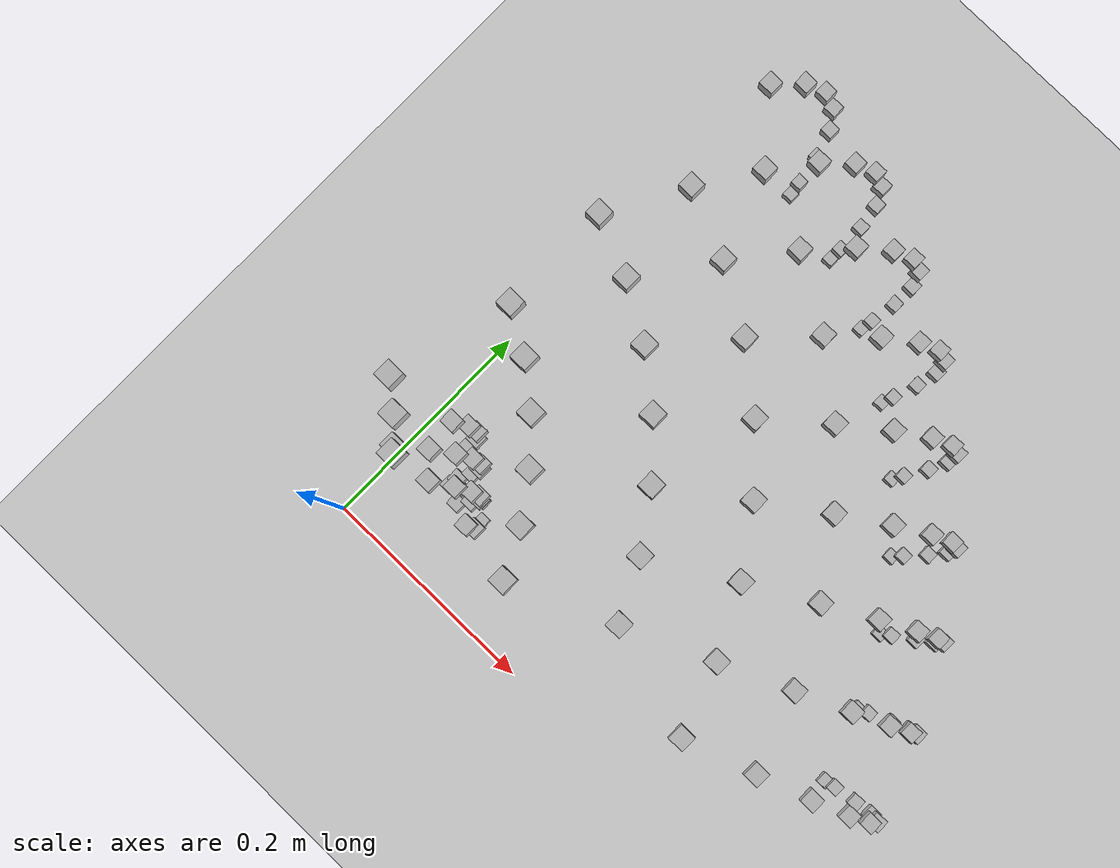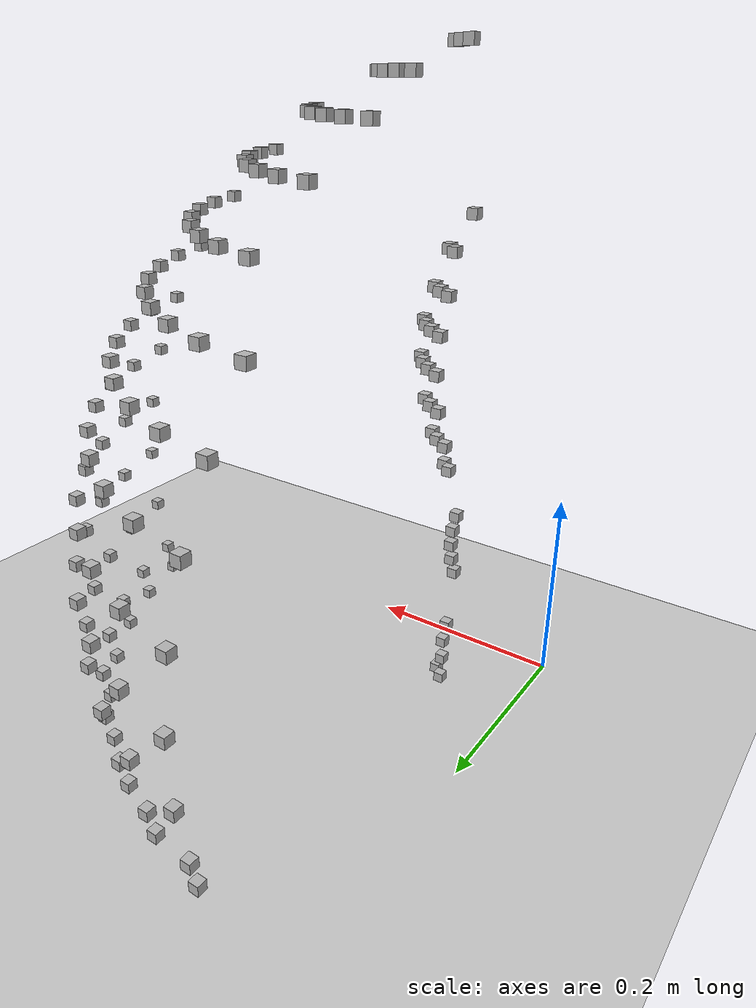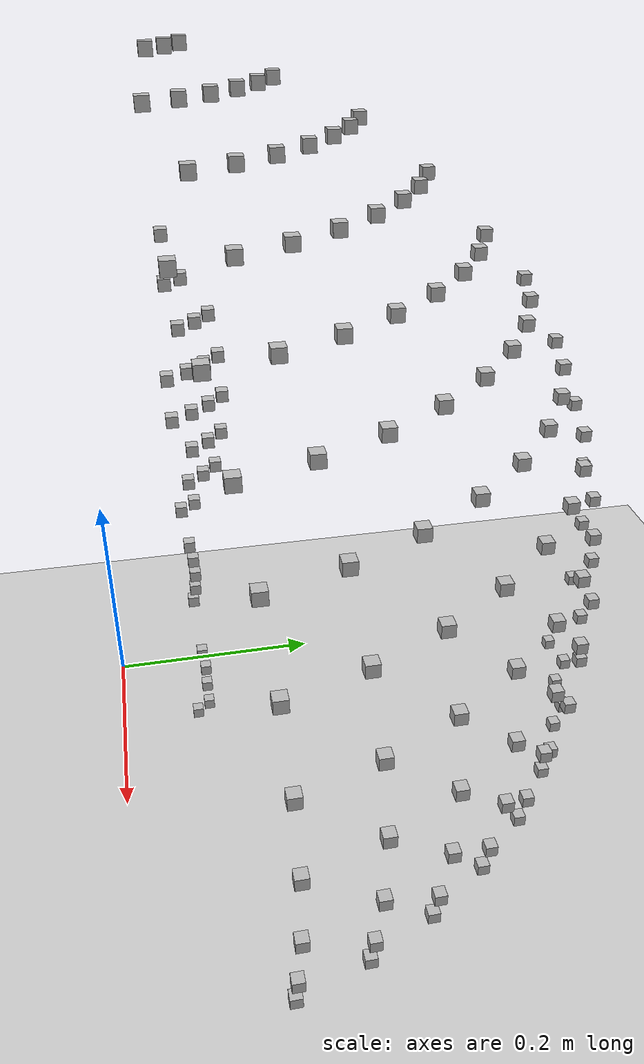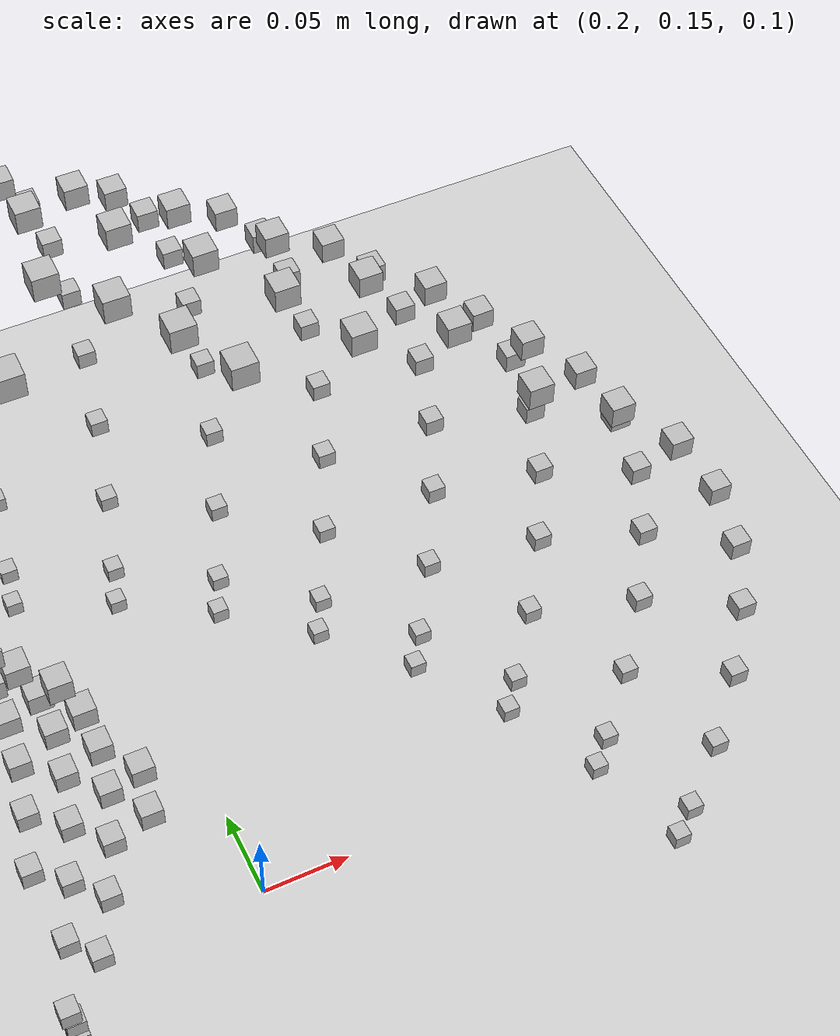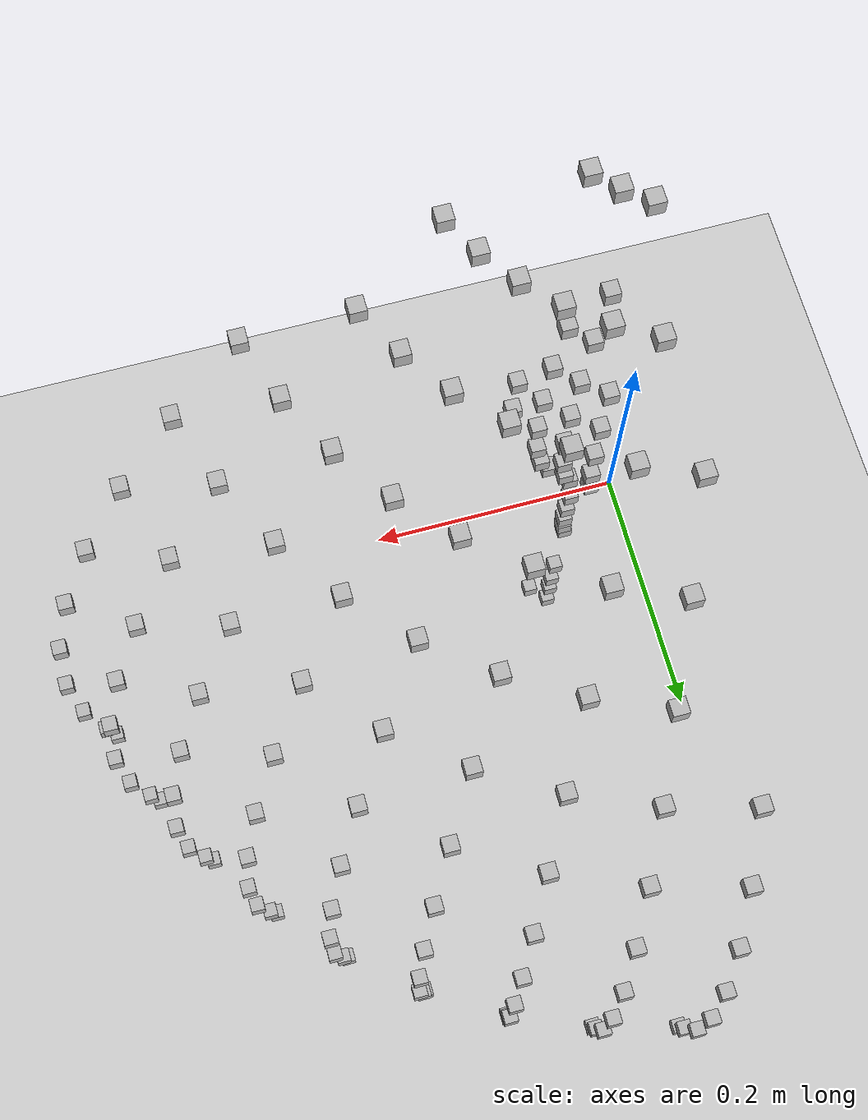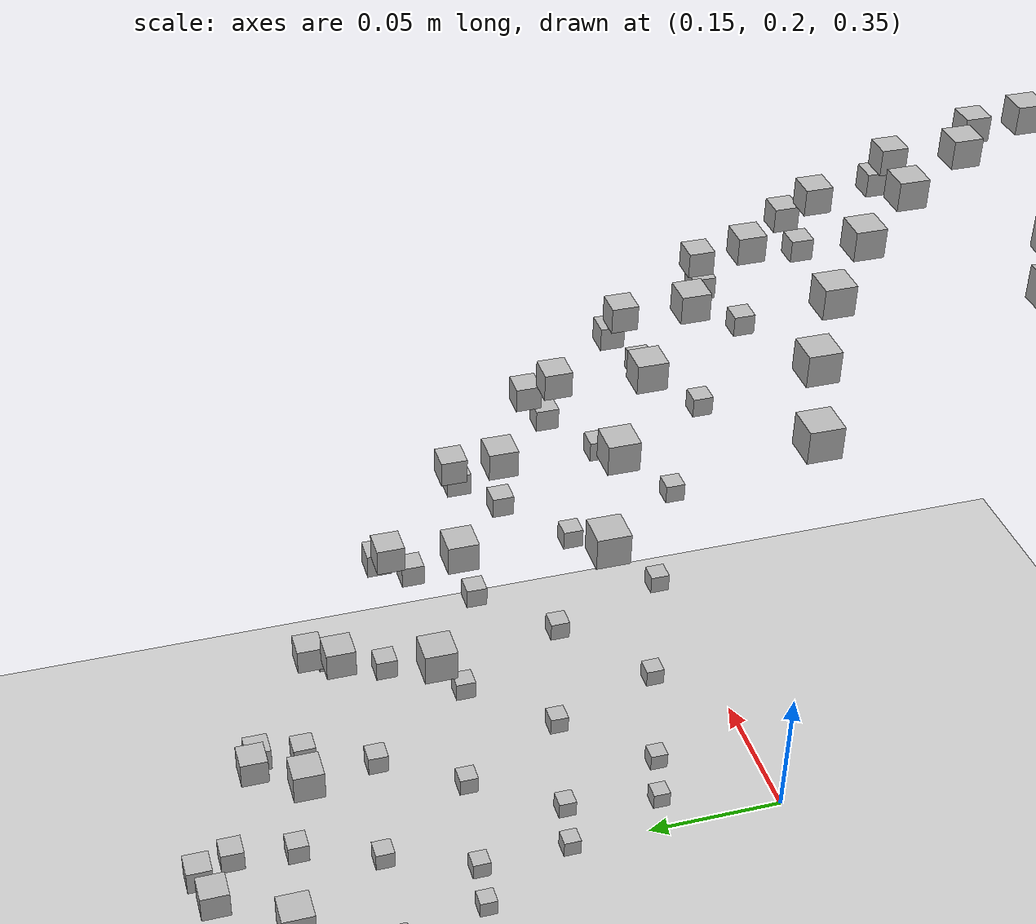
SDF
<sdf version="1.6">
 <world name="default">
  <model name="ground_plane">
   <static>1</static>
   <link name="link">
    <collision name="collision">
     <geometry><plane><normal>0 0 1</normal><size>100 100</size></plane></geometry>
     <surface>
      <contact><collide_bitmask>65535</collide_bitmask></contact>
      <friction><ode><mu>100</mu><mu2>50</mu2></ode></friction>
     </surface>
    </collision>
    <visual name="visual">
     <cast_shadows>0</cast_shadows>
     <geometry><plane><normal>0 0 1</normal><size>100 100</size></plane></geometry>
     <material>
      <script><uri>file://media/materials/scripts/gazebo.material</uri><name>Gazebo/Grey</name></script>
     </material>
    </visual>
   </link>
  </model>
  <model name="box_1685262135_658442">
   <pose>0.4440560497685209 0.1189844599296296 0.031024085780011867 0.0 0.0 0.0</pose>
   <static>1</static>
   <link name="box_1685262135_658442_link">
    <visual name="visual"><geometry><box><size>0.01 0.01 0.01</size></box></geometry></visual>
   </link>
  </model>
  <model name="box_1685262135_658462">
   <pose>0.42317509056281866 0.17962716879113524 0.031024085780011867 0.0 0.0 0.0</pose>
   <static>1</static>
   <link name="box_1685262135_658462_link">
    <visual name="visual"><geometry><box><size>0.01 0.01 0.01</size></box></geometry></visual>
   </link>
  </model>
  <model name="box_1685262135_6584792">
   <pose>0.39405750957384217 0.23677363913499758 0.031024085780011867 0.0 0.0 0.0</pose>
   <static>1</static>
   <link name="box_1685262135_6584792_link">
    <visual name="visual"><geometry><box><size>0.01 0.01 0.01</size></box></geometry></visual>
   </link>
  </model>
  <model name="box_1685262135_6584957">
   <pose>0.3572700473947844 0.2893115799191198 0.031024085780011867 0.0 0.0 0.0</pose>
   <static>1</static>
   <link name="box_1685262135_6584957_link">
    <visual name="visual"><geometry><box><size>0.01 0.01 0.01</size></box></geometry></visual>
   </link>
  </model>
  <model name="box_1685262135_6585119">
   <pose>0.3135287301318427 0.33621839988716096 0.031024085780011867 0.0 0.0 0.0</pose>
   <static>1</static>
   <link name="box_1685262135_6585119_link">
    <visual name="visual"><geometry><box><size>0.01 0.01 0.01</size></box></geometry></visual>
   </link>
  </model>
  <model name="box_1685262135_6585283">
   <pose>0.2636849327705294 0.37658111114416 0.031024085780011867 0.0 0.0 0.0</pose>
   <static>1</static>
   <link name="box_1685262135_6585283_link">
    <visual name="visual"><geometry><box><size>0.01 0.01 0.01</size></box></geometry></visual>
   </link>
  </model>
  <model name="box_1685262135_6585443">
   <pose>0.20870880813000312 0.40961409942740284 0.031024085780011867 0.0 0.0 0.0</pose>
   <static>1</static>
   <link name="box_1685262135_6585443_link">
    <visual name="visual"><geometry><box><size>0.01 0.01 0.01</size></box></geometry></visual>
   </link>
  </model>
  <model name="box_1685262135_6585605">
   <pose>0.14967040394197695 0.4346744151944236 0.031024085780011867 0.0 0.0 0.0</pose>
   <static>1</static>
   <link name="box_1685262135_6585605_link">
    <visual name="visual"><geometry><box><size>0.01 0.01 0.01</size></box></geometry></visual>
   </link>
  </model>
  <model name="box_1685262135_6585765">
   <pose>0.0877188355887813 0.45127428790450397 0.031024085780011867 0.0 0.0 0.0</pose>
   <static>1</static>
   <link name="box_1685262135_6585765_link">
    <visual name="visual"><geometry><box><size>0.01 0.01 0.01</size></box></geometry></visual>
   </link>
  </model>
  <model name="box_1685262135_659176">
   <pose>0.4493955499140104 0.12041517468159936 0.05746253559996678 0.0 0.0 0.0</pose>
   <static>1</static>
   <link name="box_1685262135_659176_link">
    <visual name="visual"><geometry><box><size>0.01 0.01 0.01</size></box></geometry></visual>
   </link>
  </model>
  <model name="box_1685262135_6591945">
   <pose>0.4282635100513169 0.18178707471831293 0.05746253559996678 0.0 0.0 0.0</pose>
   <static>1</static>
   <link name="box_1685262135_6591945_link">
    <visual name="visual"><geometry><box><size>0.01 0.01 0.01</size></box></geometry></visual>
   </link>
  </model>
  <model name="box_1685262135_659211">
   <pose>0.3987958081079969 0.2396206961253672 0.05746253559996678 0.0 0.0 0.0</pose>
   <static>1</static>
   <link name="box_1685262135_659211_link">
    <visual name="visual"><geometry><box><size>0.01 0.01 0.01</size></box></geometry></visual>
   </link>
  </model>
  <model name="box_1685262135_6592274">
   <pose>0.3615659993833631 0.2927903732468432 0.05746253559996678 0.0 0.0 0.0</pose>
   <static>1</static>
   <link name="box_1685262135_6592274_link">
    <visual name="visual"><geometry><box><size>0.01 0.01 0.01</size></box></geometry></visual>
   </link>
  </model>
  <model name="box_1685262135_6592438">
   <pose>0.3172987197559606 0.3402612187971827 0.05746253559996678 0.0 0.0 0.0</pose>
   <static>1</static>
   <link name="box_1685262135_6592438_link">
    <visual name="visual"><geometry><box><size>0.01 0.01 0.01</size></box></geometry></visual>
   </link>
  </model>
  <model name="box_1685262135_6592607">
   <pose>0.26685558147045263 0.38110926676503487 0.05746253559996678 0.0 0.0 0.0</pose>
   <static>1</static>
   <link name="box_1685262135_6592607_link">
    <visual name="visual"><geometry><box><size>0.01 0.01 0.01</size></box></geometry></visual>
   </link>
  </model>
  <model name="box_1685262135_6592772">
   <pose>0.21121840283534718 0.41453945636067124 0.05746253559996678 0.0 0.0 0.0</pose>
   <static>1</static>
   <link name="box_1685262135_6592772_link">
    <visual name="visual"><geometry><box><size>0.01 0.01 0.01</size></box></geometry></visual>
   </link>
  </model>
  <model name="box_1685262135_659294">
   <pose>0.15147009824642396 0.43990110696988993 0.05746253559996678 0.0 0.0 0.0</pose>
   <static>1</static>
   <link name="box_1685262135_659294_link">
    <visual name="visual"><geometry><box><size>0.01 0.01 0.01</size></box></geometry></visual>
   </link>
  </model>
  <model name="box_1685262135_6593113">
   <pose>0.08877360048981715 0.45670058291203247 0.05746253559996678 0.0 0.0 0.0</pose>
   <static>1</static>
   <link name="box_1685262135_6593113_link">
    <visual name="visual"><geometry><box><size>0.01 0.01 0.01</size></box></geometry></visual>
   </link>
  </model>
  <model name="box_1685262135_6599216">
   <pose>0.45884693419923706 0.12294766546818206 0.11486971929344875 0.0 0.0 0.0</pose>
   <static>1</static>
   <link name="box_1685262135_6599216_link">
    <visual name="visual"><geometry><box><size>0.01 0.01 0.01</size></box></geometry></visual>
   </link>
  </model>
  <model name="box_1685262135_6599376">
   <pose>0.4372704595184613 0.18561029793798822 0.11486971929344875 0.0 0.0 0.0</pose>
   <static>1</static>
   <link name="box_1685262135_6599376_link">
    <visual name="visual"><geometry><box><size>0.01 0.01 0.01</size></box></geometry></visual>
   </link>
  </model>
  <model name="box_1685262135_659956">
   <pose>0.40718301273093416 0.24466023708701606 0.11486971929344875 0.0 0.0 0.0</pose>
   <static>1</static>
   <link name="box_1685262135_659956_link">
    <visual name="visual"><geometry><box><size>0.01 0.01 0.01</size></box></geometry></visual>
   </link>
  </model>
  <model name="box_1685262135_6599734">
   <pose>0.36917021176441156 0.29894814301804 0.11486971929344875 0.0 0.0 0.0</pose>
   <static>1</static>
   <link name="box_1685262135_6599734_link">
    <visual name="visual"><geometry><box><size>0.01 0.01 0.01</size></box></geometry></visual>
   </link>
  </model>
  <model name="box_1685262135_6599896">
   <pose>0.3239719325507866 0.34741736339369045 0.11486971929344875 0.0 0.0 0.0</pose>
   <static>1</static>
   <link name="box_1685262135_6599896_link">
    <visual name="visual"><geometry><box><size>0.01 0.01 0.01</size></box></geometry></visual>
   </link>
  </model>
  <model name="box_1685262135_6600053">
   <pose>0.2724679081826719 0.3891244999722763 0.11486971929344875 0.0 0.0 0.0</pose>
   <static>1</static>
   <link name="box_1685262135_6600053_link">
    <visual name="visual"><geometry><box><size>0.01 0.01 0.01</size></box></geometry></visual>
   </link>
  </model>
  <model name="box_1685262135_6600213">
   <pose>0.2156606059094334 0.4232577707814601 0.11486971929344875 0.0 0.0 0.0</pose>
   <static>1</static>
   <link name="box_1685262135_6600213_link">
    <visual name="visual"><geometry><box><size>0.01 0.01 0.01</size></box></geometry></visual>
   </link>
  </model>
  <model name="box_1685262135_660037">
   <pose>0.15465571525247115 0.44915281053096123 0.11486971929344875 0.0 0.0 0.0</pose>
   <static>1</static>
   <link name="box_1685262135_660037_link">
    <visual name="visual"><geometry><box><size>0.01 0.01 0.01</size></box></geometry></visual>
   </link>
  </model>
  <model name="box_1685262135_6600528">
   <pose>0.09064062701638821 0.46630560172722674 0.11486971929344875 0.0 0.0 0.0</pose>
   <static>1</static>
   <link name="box_1685262135_6600528_link">
    <visual name="visual"><geometry><box><size>0.01 0.01 0.01</size></box></geometry></visual>
   </link>
  </model>
  <model name="box_1685262135_660644">
   <pose>0.4612975716103269 0.12360431178342508 0.18152491402812204 0.0 0.0 0.0</pose>
   <static>1</static>
   <link name="box_1685262135_660644_link">
    <visual name="visual"><geometry><box><size>0.01 0.01 0.01</size></box></geometry></visual>
   </link>
  </model>
  <model name="box_1685262135_6606598">
   <pose>0.43960585999080065 0.1866016166242603 0.18152491402812204 0.0 0.0 0.0</pose>
   <static>1</static>
   <link name="box_1685262135_6606598_link">
    <visual name="visual"><geometry><box><size>0.01 0.01 0.01</size></box></geometry></visual>
   </link>
  </model>
  <model name="box_1685262135_6606786">
   <pose>0.4093577203508077 0.24596693325369723 0.18152491402812204 0.0 0.0 0.0</pose>
   <static>1</static>
   <link name="box_1685262135_6606786_link">
    <visual name="visual"><geometry><box><size>0.01 0.01 0.01</size></box></geometry></visual>
   </link>
  </model>
  <model name="box_1685262135_6606956">
   <pose>0.37114189832169164 0.3005447833105907 0.18152491402812204 0.0 0.0 0.0</pose>
   <static>1</static>
   <link name="box_1685262135_6606956_link">
    <visual name="visual"><geometry><box><size>0.01 0.01 0.01</size></box></geometry></visual>
   </link>
  </model>
  <model name="box_1685262135_6607115">
   <pose>0.325702221409396 0.3492728710249675 0.18152491402812204 0.0 0.0 0.0</pose>
   <static>1</static>
   <link name="box_1685262135_6607115_link">
    <visual name="visual"><geometry><box><size>0.01 0.01 0.01</size></box></geometry></visual>
   </link>
  </model>
  <model name="box_1685262135_6607275">
   <pose>0.2739231212381522 0.39120275959684564 0.18152491402812204 0.0 0.0 0.0</pose>
   <static>1</static>
   <link name="box_1685262135_6607275_link">
    <visual name="visual"><geometry><box><size>0.01 0.01 0.01</size></box></geometry></visual>
   </link>
  </model>
  <model name="box_1685262135_6607432">
   <pose>0.21681241909494 0.42551833143971474 0.18152491402812204 0.0 0.0 0.0</pose>
   <static>1</static>
   <link name="box_1685262135_6607432_link">
    <visual name="visual"><geometry><box><size>0.01 0.01 0.01</size></box></geometry></visual>
   </link>
  </model>
  <model name="box_1685262135_6607592">
   <pose>0.15548170983451623 0.4515516729810378 0.18152491402812204 0.0 0.0 0.0</pose>
   <static>1</static>
   <link name="box_1685262135_6607592_link">
    <visual name="visual"><geometry><box><size>0.01 0.01 0.01</size></box></geometry></visual>
   </link>
  </model>
  <model name="box_1685262135_6607752">
   <pose>0.09112472594998718 0.4687960748402002 0.18152491402812204 0.0 0.0 0.0</pose>
   <static>1</static>
   <link name="box_1685262135_6607752_link">
    <visual name="visual"><geometry><box><size>0.01 0.01 0.01</size></box></geometry></visual>
   </link>
  </model>
  <model name="box_1685262135_6613863">
   <pose>0.4547562040593256 0.12185155763073913 0.24785452819062248 0.0 0.0 0.0</pose>
   <static>1</static>
   <link name="box_1685262135_6613863_link">
    <visual name="visual"><geometry><box><size>0.01 0.01 0.01</size></box></geometry></visual>
   </link>
  </model>
  <model name="box_1685262135_661403">
   <pose>0.4333720888097917 0.18395553774790882 0.24785452819062248 0.0 0.0 0.0</pose>
   <static>1</static>
   <link name="box_1685262135_661403_link">
    <visual name="visual"><geometry><box><size>0.01 0.01 0.01</size></box></geometry></visual>
   </link>
  </model>
  <model name="box_1685262135_6614192">
   <pose>0.40355287880501994 0.2424790325691383 0.24785452819062248 0.0 0.0 0.0</pose>
   <static>1</static>
   <link name="box_1685262135_6614192_link">
    <visual name="visual"><geometry><box><size>0.01 0.01 0.01</size></box></geometry></visual>
   </link>
  </model>
  <model name="box_1685262135_6614385">
   <pose>0.3658789710489044 0.296282948837221 0.24785452819062248 0.0 0.0 0.0</pose>
   <static>1</static>
   <link name="box_1685262135_6614385_link">
    <visual name="visual"><geometry><box><size>0.01 0.01 0.01</size></box></geometry></visual>
   </link>
  </model>
  <model name="box_1685262135_6614559">
   <pose>0.32108364530248296 0.34432005452304637 0.24785452819062248 0.0 0.0 0.0</pose>
   <static>1</static>
   <link name="box_1685262135_6614559_link">
    <visual name="visual"><geometry><box><size>0.01 0.01 0.01</size></box></geometry></visual>
   </link>
  </model>
  <model name="box_1685262135_6614726">
   <pose>0.270038791627482 0.3856553620058376 0.24785452819062248 0.0 0.0 0.0</pose>
   <static>1</static>
   <link name="box_1685262135_6614726_link">
    <visual name="visual"><geometry><box><size>0.01 0.01 0.01</size></box></geometry></visual>
   </link>
  </model>
  <model name="box_1685262135_6614885">
   <pose>0.2137379400380249 0.4194843265436576 0.24785452819062248 0.0 0.0 0.0</pose>
   <static>1</static>
   <link name="box_1685262135_6614885_link">
    <visual name="visual"><geometry><box><size>0.01 0.01 0.01</size></box></geometry></visual>
   </link>
  </model>
  <model name="box_1685262135_661505">
   <pose>0.153276922569031 0.4451485058216545 0.24785452819062248 0.0 0.0 0.0</pose>
   <static>1</static>
   <link name="box_1685262135_661505_link">
    <visual name="visual"><geometry><box><size>0.01 0.01 0.01</size></box></geometry></visual>
   </link>
  </model>
  <model name="box_1685262135_6615222">
   <pose>0.08983254415214614 0.4621483757827534 0.24785452819062248 0.0 0.0 0.0</pose>
   <static>1</static>
   <link name="box_1685262135_6615222_link">
    <visual name="visual"><geometry><box><size>0.01 0.01 0.01</size></box></geometry></visual>
   </link>
  </model>
  <model name="box_1685262135_6621273">
   <pose>0.43934591089481745 0.11772238202218231 0.31265492137086764 0.0 0.0 0.0</pose>
   <static>1</static>
   <link name="box_1685262135_6621273_link">
    <visual name="visual"><geometry><box><size>0.01 0.01 0.01</size></box></geometry></visual>
   </link>
  </model>
  <model name="box_1685262135_6621432">
   <pose>0.41868643773288433 0.17772184870612018 0.31265492137086764 0.0 0.0 0.0</pose>
   <static>1</static>
   <link name="box_1685262135_6621432_link">
    <visual name="visual"><geometry><box><size>0.01 0.01 0.01</size></box></geometry></visual>
   </link>
  </model>
  <model name="box_1685262135_6621592">
   <pose>0.38987770930924476 0.23426216176060002 0.31265492137086764 0.0 0.0 0.0</pose>
   <static>1</static>
   <link name="box_1685262135_6621592_link">
    <visual name="visual"><geometry><box><size>0.01 0.01 0.01</size></box></geometry></visual>
   </link>
  </model>
  <model name="box_1685262135_662177">
   <pose>0.353480454753222 0.28624282830566933 0.31265492137086764 0.0 0.0 0.0</pose>
   <static>1</static>
   <link name="box_1685262135_662177_link">
    <visual name="visual"><geometry><box><size>0.01 0.01 0.01</size></box></geometry></visual>
   </link>
  </model>
  <model name="box_1685262135_6621938">
   <pose>0.31020310522348554 0.33265210379416005 0.31265492137086764 0.0 0.0 0.0</pose>
   <static>1</static>
   <link name="box_1685262135_6621938_link">
    <visual name="visual"><geometry><box><size>0.01 0.01 0.01</size></box></geometry></visual>
   </link>
  </model>
  <model name="box_1685262135_6622097">
   <pose>0.2608880051013764 0.3725866844684573 0.31265492137086764 0.0 0.0 0.0</pose>
   <static>1</static>
   <link name="box_1685262135_6622097_link">
    <visual name="visual"><geometry><box><size>0.01 0.01 0.01</size></box></geometry></visual>
   </link>
  </model>
  <model name="box_1685262135_6622257">
   <pose>0.20649501671567627 0.40526928914064786 0.31265492137086764 0.0 0.0 0.0</pose>
   <static>1</static>
   <link name="box_1685262135_6622257_link">
    <visual name="visual"><geometry><box><size>0.01 0.01 0.01</size></box></geometry></visual>
   </link>
  </model>
  <model name="box_1685262135_6622424">
   <pose>0.14808283771420572 0.43006378808669965 0.31265492137086764 0.0 0.0 0.0</pose>
   <static>1</static>
   <link name="box_1685262135_6622424_link">
    <visual name="visual"><geometry><box><size>0.01 0.01 0.01</size></box></geometry></visual>
   </link>
  </model>
  <model name="box_1685262135_6622584">
   <pose>0.08678839471835942 0.4464875845879522 0.31265492137086764 0.0 0.0 0.0</pose>
   <static>1</static>
   <link name="box_1685262135_6622584_link">
    <visual name="visual"><geometry><box><size>0.01 0.01 0.01</size></box></geometry></visual>
   </link>
  </model>
  <model name="box_1685262135_66288">
   <pose>0.41540948375175124 0.11130863569951131 0.37450685986133164 0.0 0.0 0.0</pose>
   <static>1</static>
   <link name="box_1685262135_66288_link">
    <visual name="visual"><geometry><box><size>0.01 0.01 0.01</size></box></geometry></visual>
   </link>
  </model>
  <model name="box_1685262135_662896">
   <pose>0.39587557921784416 0.1680392137303652 0.37450685986133164 0.0 0.0 0.0</pose>
   <static>1</static>
   <link name="box_1685262135_662896_link">
    <visual name="visual"><geometry><box><size>0.01 0.01 0.01</size></box></geometry></visual>
   </link>
  </model>
  <model name="box_1685262135_662912">
   <pose>0.368636406836259 0.22149909960773012 0.37450685986133164 0.0 0.0 0.0</pose>
   <static>1</static>
   <link name="box_1685262135_662912_link">
    <visual name="visual"><geometry><box><size>0.01 0.01 0.01</size></box></geometry></visual>
   </link>
  </model>
  <model name="box_1685262135_6629279">
   <pose>0.33422214611330375 0.27064775746272207 0.37450685986133164 0.0 0.0 0.0</pose>
   <static>1</static>
   <link name="box_1685262135_6629279_link">
    <visual name="visual"><geometry><box><size>0.01 0.01 0.01</size></box></geometry></visual>
   </link>
  </model>
  <model name="box_1685262135_662948">
   <pose>0.2933026314883095 0.3145285645759633 0.37450685986133164 0.0 0.0 0.0</pose>
   <static>1</static>
   <link name="box_1685262135_662948_link">
    <visual name="visual"><geometry><box><size>0.01 0.01 0.01</size></box></geometry></visual>
   </link>
  </model>
  <model name="box_1685262135_662965">
   <pose>0.24667431476819376 0.35228743095067283 0.37450685986133164 0.0 0.0 0.0</pose>
   <static>1</static>
   <link name="box_1685262135_662965_link">
    <visual name="visual"><geometry><box><size>0.01 0.01 0.01</size></box></geometry></visual>
   </link>
  </model>
  <model name="box_1685262135_662982">
   <pose>0.19524476309898936 0.3831894232029408 0.37450685986133164 0.0 0.0 0.0</pose>
   <static>1</static>
   <link name="box_1685262135_662982_link">
    <visual name="visual"><geometry><box><size>0.01 0.01 0.01</size></box></geometry></visual>
   </link>
  </model>
  <model name="box_1685262135_6629977">
   <pose>0.1400149942036895 0.40663306920407216 0.37450685986133164 0.0 0.0 0.0</pose>
   <static>1</static>
   <link name="box_1685262135_6629977_link">
    <visual name="visual"><geometry><box><size>0.01 0.01 0.01</size></box></geometry></visual>
   </link>
  </model>
  <model name="box_1685262135_6630144">
   <pose>0.08205999271091015 0.42216206505140697 0.37450685986133164 0.0 0.0 0.0</pose>
   <static>1</static>
   <link name="box_1685262135_6630144_link">
    <visual name="visual"><geometry><box><size>0.01 0.01 0.01</size></box></geometry></visual>
   </link>
  </model>
  <model name="box_1685262135_6636615">
   <pose>0.09182937001812576 0.07436195761903452 0.005648136022940203 0.0 0.0 0.0</pose>
   <static>1</static>
   <link name="box_1685262135_6636615_link">
    <visual name="visual"><geometry><box><size>0.01 0.01 0.01</size></box></geometry></visual>
   </link>
  </model>
  <model name="box_1685262135_6636798">
   <pose>0.08058650866630244 0.08641845034387564 0.005648136022940203 0.0 0.0 0.0</pose>
   <static>1</static>
   <link name="box_1685262135_6636798_link">
    <visual name="visual"><geometry><box><size>0.01 0.01 0.01</size></box></geometry></visual>
   </link>
  </model>
  <model name="box_1685262135_6643555">
   <pose>0.383332242510038 0.10271356481337596 0.4324042100445494 0.0 0.0 0.0</pose>
   <static>1</static>
   <link name="box_1685262135_6643555_link">
    <visual name="visual"><geometry><box><size>0.01 0.01 0.01</size></box></geometry></visual>
   </link>
  </model>
  <model name="box_1685262135_6643734">
   <pose>0.3653067141510504 0.15506350034940172 0.4324042100445494 0.0 0.0 0.0</pose>
   <static>1</static>
   <link name="box_1685262135_6643734_link">
    <visual name="visual"><geometry><box><size>0.01 0.01 0.01</size></box></geometry></visual>
   </link>
  </model>
  <model name="box_1685262135_6643898">
   <pose>0.34017090613134116 0.20439530123324376 0.4324042100445494 0.0 0.0 0.0</pose>
   <static>1</static>
   <link name="box_1685262135_6643898_link">
    <visual name="visual"><geometry><box><size>0.01 0.01 0.01</size></box></geometry></visual>
   </link>
  </model>
  <model name="box_1685262135_664406">
   <pose>0.30841405836245595 0.24974878007478987 0.4324042100445494 0.0 0.0 0.0</pose>
   <static>1</static>
   <link name="box_1685262135_664406_link">
    <visual name="visual"><geometry><box><size>0.01 0.01 0.01</size></box></geometry></visual>
   </link>
  </model>
  <model name="box_1685262135_6644225">
   <pose>0.2706542817633373 0.29024118299720697 0.4324042100445494 0.0 0.0 0.0</pose>
   <static>1</static>
   <link name="box_1685262135_6644225_link">
    <visual name="visual"><geometry><box><size>0.01 0.01 0.01</size></box></geometry></visual>
   </link>
  </model>
  <model name="box_1685262135_6644409">
   <pose>0.22762652743437775 0.3250843714370358 0.4324042100445494 0.0 0.0 0.0</pose>
   <static>1</static>
   <link name="box_1685262135_6644409_link">
    <visual name="visual"><geometry><box><size>0.01 0.01 0.01</size></box></geometry></visual>
   </link>
  </model>
  <model name="box_1685262135_6644578">
   <pose>0.18016828167024532 0.35360016236483444 0.4324042100445494 0.0 0.0 0.0</pose>
   <static>1</static>
   <link name="box_1685262135_6644578_link">
    <visual name="visual"><geometry><box><size>0.01 0.01 0.01</size></box></geometry></visual>
   </link>
  </model>
  <model name="box_1685262135_6644738">
   <pose>0.12920326524178447 0.37523352834642487 0.4324042100445494 0.0 0.0 0.0</pose>
   <static>1</static>
   <link name="box_1685262135_6644738_link">
    <visual name="visual"><geometry><box><size>0.01 0.01 0.01</size></box></geometry></visual>
   </link>
  </model>
  <model name="box_1685262135_66449">
   <pose>0.07572345422192821 0.3895634005205645 0.4324042100445494 0.0 0.0 0.0</pose>
   <static>1</static>
   <link name="box_1685262135_66449_link">
    <visual name="visual"><geometry><box><size>0.01 0.01 0.01</size></box></geometry></visual>
   </link>
  </model>
  <model name="box_1685262135_6651464">
   <pose>0.08017466021326143 0.08597679694956241 0.02920890265866033 0.0 0.0 0.0</pose>
   <static>1</static>
   <link name="box_1685262135_6651464_link">
    <visual name="visual"><geometry><box><size>0.01 0.01 0.01</size></box></geometry></visual>
   </link>
  </model>
  <model name="box_1685262135_6658304">
   <pose>0.34373179442787355 0.09210265672984938 0.4851615351605009 0.0 0.0 0.0</pose>
   <static>1</static>
   <link name="box_1685262135_6658304_link">
    <visual name="visual"><geometry><box><size>0.01 0.01 0.01</size></box></geometry></visual>
   </link>
  </model>
  <model name="box_1685262135_6658552">
   <pose>0.3275684078894112 0.13904453973493064 0.4851615351605009 0.0 0.0 0.0</pose>
   <static>1</static>
   <link name="box_1685262135_6658552_link">
    <visual name="visual"><geometry><box><size>0.01 0.01 0.01</size></box></geometry></visual>
   </link>
  </model>
  <model name="box_1685262135_665873">
   <pose>0.3050292748949229 0.1832800789348912 0.4851615351605009 0.0 0.0 0.0</pose>
   <static>1</static>
   <link name="box_1685262135_665873_link">
    <visual name="visual"><geometry><box><size>0.01 0.01 0.01</size></box></geometry></visual>
   </link>
  </model>
  <model name="box_1685262135_6658893">
   <pose>0.27655309403026246 0.22394827987638394 0.4851615351605009 0.0 0.0 0.0</pose>
   <static>1</static>
   <link name="box_1685262135_6658893_link">
    <visual name="visual"><geometry><box><size>0.01 0.01 0.01</size></box></geometry></visual>
   </link>
  </model>
  <model name="box_1685262135_6659052">
   <pose>0.2426941217647849 0.2602575822874756 0.4851615351605009 0.0 0.0 0.0</pose>
   <static>1</static>
   <link name="box_1685262135_6659052_link">
    <visual name="visual"><geometry><box><size>0.01 0.01 0.01</size></box></geometry></visual>
   </link>
  </model>
  <model name="box_1685262135_665921">
   <pose>0.20411138447962768 0.29150126689795364 0.4851615351605009 0.0 0.0 0.0</pose>
   <static>1</static>
   <link name="box_1685262135_665921_link">
    <visual name="visual"><geometry><box><size>0.01 0.01 0.01</size></box></geometry></visual>
   </link>
  </model>
  <model name="box_1685262135_6659389">
   <pose>0.16155585126883315 0.3170712109260395 0.4851615351605009 0.0 0.0 0.0</pose>
   <static>1</static>
   <link name="box_1685262135_6659389_link">
    <visual name="visual"><geometry><box><size>0.01 0.01 0.01</size></box></geometry></visual>
   </link>
  </model>
  <model name="box_1685262135_6659558">
   <pose>0.11585581718014788 0.33646972449660684 0.4851615351605009 0.0 0.0 0.0</pose>
   <static>1</static>
   <link name="box_1685262135_6659558_link">
    <visual name="visual"><geometry><box><size>0.01 0.01 0.01</size></box></geometry></visual>
   </link>
  </model>
  <model name="box_1685262135_6666272">
   <pose>0.08036001922584148 0.08617557015477431 0.05028140928145608 0.0 0.0 0.0</pose>
   <static>1</static>
   <link name="box_1685262135_6666272_link">
    <visual name="visual"><geometry><box><size>0.01 0.01 0.01</size></box></geometry></visual>
   </link>
  </model>
  <model name="box_1685262135_6672907">
   <pose>0.2974103280210704 0.0796908572139211 0.5316791207351375 0.0 0.0 0.0</pose>
   <static>1</static>
   <link name="box_1685262135_6672907_link">
    <visual name="visual"><geometry><box><size>0.01 0.01 0.01</size></box></geometry></visual>
   </link>
  </model>
  <model name="box_1685262135_6673067">
   <pose>0.28342512743659515 0.1203068288778325 0.5316791207351375 0.0 0.0 0.0</pose>
   <static>1</static>
   <link name="box_1685262135_6673067_link">
    <visual name="visual"><geometry><box><size>0.01 0.01 0.01</size></box></geometry></visual>
   </link>
  </model>
  <model name="box_1685262135_667329">
   <pose>0.2639233791378706 0.15858116496462643 0.5316791207351375 0.0 0.0 0.0</pose>
   <static>1</static>
   <link name="box_1685262135_667329_link">
    <visual name="visual"><geometry><box><size>0.01 0.01 0.01</size></box></geometry></visual>
   </link>
  </model>
  <model name="box_1685262135_667355">
   <pose>0.23928466247262162 0.19376889905878547 0.5316791207351375 0.0 0.0 0.0</pose>
   <static>1</static>
   <link name="box_1685262135_667355_link">
    <visual name="visual"><geometry><box><size>0.01 0.01 0.01</size></box></geometry></visual>
   </link>
  </model>
  <model name="box_1685262135_667374">
   <pose>0.20998854203461242 0.22518514194162115 0.5316791207351375 0.0 0.0 0.0</pose>
   <static>1</static>
   <link name="box_1685262135_667374_link">
    <visual name="visual"><geometry><box><size>0.01 0.01 0.01</size></box></geometry></visual>
   </link>
  </model>
  <model name="box_1685262135_66739">
   <pose>0.17660523348432583 0.2522184121808656 0.5316791207351375 0.0 0.0 0.0</pose>
   <static>1</static>
   <link name="box_1685262135_66739_link">
    <visual name="visual"><geometry><box><size>0.01 0.01 0.01</size></box></geometry></visual>
   </link>
  </model>
  <model name="box_1685262135_667406">
   <pose>0.1397845049497424 0.2743425379212011 0.5316791207351375 0.0 0.0 0.0</pose>
   <static>1</static>
   <link name="box_1685262135_667406_link">
    <visual name="visual"><geometry><box><size>0.01 0.01 0.01</size></box></geometry></visual>
   </link>
  </model>
  <model name="box_1685262135_6674263">
   <pose>0.10024303002883 0.29112689822091214 0.5316791207351375 0.0 0.0 0.0</pose>
   <static>1</static>
   <link name="box_1685262135_6674263_link">
    <visual name="visual"><geometry><box><size>0.01 0.01 0.01</size></box></geometry></visual>
   </link>
  </model>
  <model name="box_1685262135_668097">
   <pose>0.07836063395922181 0.08403149195556703 0.06994559093984248 0.0 0.0 0.0</pose>
   <static>1</static>
   <link name="box_1685262135_668097_link">
    <visual name="visual"><geometry><box><size>0.01 0.01 0.01</size></box></geometry></visual>
   </link>
  </model>
  <model name="box_1685262135_6687806">
   <pose>0.2337878821341989 0.09923706830094679 0.5710245451470004 0.0 0.0 0.0</pose>
   <static>1</static>
   <link name="box_1685262135_6687806_link">
    <visual name="visual"><geometry><box><size>0.01 0.01 0.01</size></box></geometry></visual>
   </link>
  </model>
  <model name="box_1685262135_6687973">
   <pose>0.21770154401058645 0.13080828449745663 0.5710245451470004 0.0 0.0 0.0</pose>
   <static>1</static>
   <link name="box_1685262135_6687973_link">
    <visual name="visual"><geometry><box><size>0.01 0.01 0.01</size></box></geometry></visual>
   </link>
  </model>
  <model name="box_1685262135_6688147">
   <pose>0.1973778929646439 0.15983346622844175 0.5710245451470004 0.0 0.0 0.0</pose>
   <static>1</static>
   <link name="box_1685262135_6688147_link">
    <visual name="visual"><geometry><box><size>0.01 0.01 0.01</size></box></geometry></visual>
   </link>
  </model>
  <model name="box_1685262135_66884">
   <pose>0.17321250574617014 0.18574767134716338 0.5710245451470004 0.0 0.0 0.0</pose>
   <static>1</static>
   <link name="box_1685262135_66884_link">
    <visual name="visual"><geometry><box><size>0.01 0.01 0.01</size></box></geometry></visual>
   </link>
  </model>
  <model name="box_1685262135_6688638">
   <pose>0.14567573412965226 0.20804650932795707 0.5710245451470004 0.0 0.0 0.0</pose>
   <static>1</static>
   <link name="box_1685262135_6688638_link">
    <visual name="visual"><geometry><box><size>0.01 0.01 0.01</size></box></geometry></visual>
   </link>
  </model>
  <model name="box_1685262135_668882">
   <pose>0.11530355005199222 0.22629595865407887 0.5710245451470004 0.0 0.0 0.0</pose>
   <static>1</static>
   <link name="box_1685262135_668882_link">
    <visual name="visual"><geometry><box><size>0.01 0.01 0.01</size></box></geometry></visual>
   </link>
  </model>
  <model name="box_1685262135_668898">
   <pose>0.08268711352841443 0.24014081455283678 0.5710245451470004 0.0 0.0 0.0</pose>
   <static>1</static>
   <link name="box_1685262135_668898_link">
    <visual name="visual"><geometry><box><size>0.01 0.01 0.01</size></box></geometry></visual>
   </link>
  </model>
  <model name="box_1685262135_6705627">
   <pose>0.17948322765692154 0.07618611007237841 0.6025204345093003 0.0 0.0 0.0</pose>
   <static>1</static>
   <link name="box_1685262135_6705627_link">
    <visual name="visual"><geometry><box><size>0.01 0.01 0.01</size></box></geometry></visual>
   </link>
  </model>
  <model name="box_1685262135_6705794">
   <pose>0.1671334520344655 0.10042390944964201 0.6025204345093003 0.0 0.0 0.0</pose>
   <static>1</static>
   <link name="box_1685262135_6705794_link">
    <visual name="visual"><geometry><box><size>0.01 0.01 0.01</size></box></geometry></visual>
   </link>
  </model>
  <model name="box_1685262135_670596">
   <pose>0.15153061387964253 0.12270707165997224 0.6025204345093003 0.0 0.0 0.0</pose>
   <static>1</static>
   <link name="box_1685262135_670596_link">
    <visual name="visual"><geometry><box><size>0.01 0.01 0.01</size></box></geometry></visual>
   </link>
  </model>
  <model name="box_1685262135_6706119">
   <pose>0.13297840468917088 0.14260188029766638 0.6025204345093003 0.0 0.0 0.0</pose>
   <static>1</static>
   <link name="box_1685262135_6706119_link">
    <visual name="visual"><geometry><box><size>0.01 0.01 0.01</size></box></geometry></visual>
   </link>
  </model>
  <model name="box_1685262135_6706314">
   <pose>0.11183792211211796 0.1597211055426011 0.6025204345093003 0.0 0.0 0.0</pose>
   <static>1</static>
   <link name="box_1685262135_6706314_link">
    <visual name="visual"><geometry><box><size>0.01 0.01 0.01</size></box></geometry></visual>
   </link>
  </model>
  <model name="box_1685262135_6706498">
   <pose>0.08852064159490351 0.17373154114821382 0.6025204345093003 0.0 0.0 0.0</pose>
   <static>1</static>
   <link name="box_1685262135_6706498_link">
    <visual name="visual"><geometry><box><size>0.01 0.01 0.01</size></box></geometry></visual>
   </link>
  </model>
  <model name="box_1685262135_6721613">
   <pose>0.10277923502992595 0.08322898347123098 0.6254485040649695 0.0 0.0 0.0</pose>
   <static>1</static>
   <link name="box_1685262135_6721613_link">
    <visual name="visual"><geometry><box><size>0.01 0.01 0.01</size></box></geometry></visual>
   </link>
  </model>
  <model name="box_1685262135_672178">
   <pose>0.09019575886037547 0.09672310957879816 0.6254485040649695 0.0 0.0 0.0</pose>
   <static>1</static>
   <link name="box_1685262135_672178_link">
    <visual name="visual"><geometry><box><size>0.01 0.01 0.01</size></box></geometry></visual>
   </link>
  </model>
  <model name="box_1685262135_6721945">
   <pose>0.07585672484076285 0.10833463037932049 0.6254485040649695 0.0 0.0 0.0</pose>
   <static>1</static>
   <link name="box_1685262135_6721945_link">
    <visual name="visual"><geometry><box><size>0.01 0.01 0.01</size></box></geometry></visual>
   </link>
  </model>
  <model name="box_1685262135_6744995">
   <pose>0.07517193982812687 0.08061203614354147 0.13255102465284446 0.0 0.0 0.0</pose>
   <static>1</static>
   <link name="box_1685262135_6744995_link">
    <visual name="visual"><geometry><box><size>0.01 0.01 0.01</size></box></geometry></visual>
   </link>
  </model>
  <model name="box_1685262135_6760597">
   <pose>0.0776534359346144 0.08327311492218678 0.14825398363050718 0.0 0.0 0.0</pose>
   <static>1</static>
   <link name="box_1685262135_6760597_link">
    <visual name="visual"><geometry><box><size>0.01 0.01 0.01</size></box></geometry></visual>
   </link>
  </model>
  <model name="box_1685262135_6769133">
   <pose>0.07860482417609425 0.08429335390343518 0.16428489958480497 0.0 0.0 0.0</pose>
   <static>1</static>
   <link name="box_1685262135_6769133_link">
    <visual name="visual"><geometry><box><size>0.01 0.01 0.01</size></box></geometry></visual>
   </link>
  </model>
  <model name="box_1685262135_6776536">
   <pose>0.07803312316930572 0.08368027963226554 0.18035913689155542 0.0 0.0 0.0</pose>
   <static>1</static>
   <link name="box_1685262135_6776536_link">
    <visual name="visual"><geometry><box><size>0.01 0.01 0.01</size></box></geometry></visual>
   </link>
  </model>
  <model name="box_1685262135_6784077">
   <pose>0.07593947178554991 0.08143511339862593 0.19617448160834577 0.0 0.0 0.0</pose>
   <static>1</static>
   <link name="box_1685262135_6784077_link">
    <visual name="visual"><geometry><box><size>0.01 0.01 0.01</size></box></geometry></visual>
   </link>
  </model>
  <model name="box_1685262135_6806047">
   <pose>0.09501517188513497 0.07694176910386144 0.24636117300793503 0.0 0.0 0.0</pose>
   <static>1</static>
   <link name="box_1685262135_6806047_link">
    <visual name="visual"><geometry><box><size>0.01 0.01 0.01</size></box></geometry></visual>
   </link>
  </model>
  <model name="box_1685262135_6806214">
   <pose>0.0833822661643032 0.08941653320554856 0.24636117300793503 0.0 0.0 0.0</pose>
   <static>1</static>
   <link name="box_1685262135_6806214_link">
    <visual name="visual"><geometry><box><size>0.01 0.01 0.01</size></box></geometry></visual>
   </link>
  </model>
  <model name="box_1685262135_6813397">
   <pose>0.10536516838932325 0.08532303101657725 0.2798396861917631 0.0 0.0 0.0</pose>
   <static>1</static>
   <link name="box_1685262135_6813397_link">
    <visual name="visual"><geometry><box><size>0.01 0.01 0.01</size></box></geometry></visual>
   </link>
  </model>
  <model name="box_1685262135_681359">
   <pose>0.09246509100363658 0.09915667036188464 0.2798396861917631 0.0 0.0 0.0</pose>
   <static>1</static>
   <link name="box_1685262135_681359_link">
    <visual name="visual"><geometry><box><size>0.01 0.01 0.01</size></box></geometry></visual>
   </link>
  </model>
  <model name="box_1685262135_6813753">
   <pose>0.07776528579904626 0.11106033790763876 0.2798396861917631 0.0 0.0 0.0</pose>
   <static>1</static>
   <link name="box_1685262135_6813753_link">
    <visual name="visual"><geometry><box><size>0.01 0.01 0.01</size></box></geometry></visual>
   </link>
  </model>
  <model name="box_1685262135_6820993">
   <pose>0.11197523319809101 0.09067575595710158 0.314821790288947 0.0 0.0 0.0</pose>
   <static>1</static>
   <link name="box_1685262135_6820993_link">
    <visual name="visual"><geometry><box><size>0.01 0.01 0.01</size></box></geometry></visual>
   </link>
  </model>
  <model name="box_1685262135_6821153">
   <pose>0.09826587178751259 0.10537724616822572 0.314821790288947 0.0 0.0 0.0</pose>
   <static>1</static>
   <link name="box_1685262135_6821153_link">
    <visual name="visual"><geometry><box><size>0.01 0.01 0.01</size></box></geometry></visual>
   </link>
  </model>
  <model name="box_1685262135_6821318">
   <pose>0.08264387695836271 0.11802768814752626 0.314821790288947 0.0 0.0 0.0</pose>
   <static>1</static>
   <link name="box_1685262135_6821318_link">
    <visual name="visual"><geometry><box><size>0.01 0.01 0.01</size></box></geometry></visual>
   </link>
  </model>
  <model name="box_1685262135_6828082">
   <pose>0.12655436773264006 0.07604153573647561 0.3506667056619606 0.0 0.0 0.0</pose>
   <static>1</static>
   <link name="box_1685262135_6828082_link">
    <visual name="visual"><geometry><box><size>0.01 0.01 0.01</size></box></geometry></visual>
   </link>
  </model>
  <model name="box_1685262135_682829">
   <pose>0.11473981299520103 0.09291446853529477 0.3506667056619606 0.0 0.0 0.0</pose>
   <static>1</static>
   <link name="box_1685262135_682829_link">
    <visual name="visual"><geometry><box><size>0.01 0.01 0.01</size></box></geometry></visual>
   </link>
  </model>
  <model name="box_1685262135_6828456">
   <pose>0.10069197831241325 0.1079789268927159 0.3506667056619606 0.0 0.0 0.0</pose>
   <static>1</static>
   <link name="box_1685262135_6828456_link">
    <visual name="visual"><geometry><box><size>0.01 0.01 0.01</size></box></geometry></visual>
   </link>
  </model>
  <model name="box_1685262135_6828616">
   <pose>0.08468428880720208 0.1209416982623792 0.3506667056619606 0.0 0.0 0.0</pose>
   <static>1</static>
   <link name="box_1685262135_6828616_link">
    <visual name="visual"><geometry><box><size>0.01 0.01 0.01</size></box></geometry></visual>
   </link>
  </model>
  <model name="box_1685262135_6835322">
   <pose>0.12529145848262374 0.07528270330273518 0.38661397693110494 0.0 0.0 0.0</pose>
   <static>1</static>
   <link name="box_1685262135_6835322_link">
    <visual name="visual"><geometry><box><size>0.01 0.01 0.01</size></box></geometry></visual>
   </link>
  </model>
  <model name="box_1685262135_6835482">
   <pose>0.11359480335410423 0.09198725801008024 0.38661397693110494 0.0 0.0 0.0</pose>
   <static>1</static>
   <link name="box_1685262135_6835482_link">
    <visual name="visual"><geometry><box><size>0.01 0.01 0.01</size></box></geometry></visual>
   </link>
  </model>
  <model name="box_1685262135_6835682">
   <pose>0.09968715459047076 0.10690138537421423 0.38661397693110494 0.0 0.0 0.0</pose>
   <static>1</static>
   <link name="box_1685262135_6835682_link">
    <visual name="visual"><geometry><box><size>0.01 0.01 0.01</size></box></geometry></visual>
   </link>
  </model>
  <model name="box_1685262135_6835864">
   <pose>0.08383920875519148 0.11973479887056272 0.38661397693110494 0.0 0.0 0.0</pose>
   <static>1</static>
   <link name="box_1685262135_6835864_link">
    <visual name="visual"><geometry><box><size>0.01 0.01 0.01</size></box></geometry></visual>
   </link>
  </model>
  <model name="box_1685262135_6843562">
   <pose>0.10855826468866506 0.0879087494162383 0.42204584917069304 0.0 0.0 0.0</pose>
   <static>1</static>
   <link name="box_1685262135_6843562_link">
    <visual name="visual"><geometry><box><size>0.01 0.01 0.01</size></box></geometry></visual>
   </link>
  </model>
  <model name="box_1685262135_684373">
   <pose>0.09526724986140132 0.10216161784147006 0.42204584917069304 0.0 0.0 0.0</pose>
   <static>1</static>
   <link name="box_1685262135_684373_link">
    <visual name="visual"><geometry><box><size>0.01 0.01 0.01</size></box></geometry></visual>
   </link>
  </model>
  <model name="box_1685262135_6843896">
   <pose>0.080121966380476 0.11442602658253549 0.42204584917069304 0.0 0.0 0.0</pose>
   <static>1</static>
   <link name="box_1685262135_6843896_link">
    <visual name="visual"><geometry><box><size>0.01 0.01 0.01</size></box></geometry></visual>
   </link>
  </model>
  <model name="box_1685262135_6851447">
   <pose>0.09973322732976864 0.08076237507065455 0.45627229759588134 0.0 0.0 0.0</pose>
   <static>1</static>
   <link name="box_1685262135_6851447_link">
    <visual name="visual"><geometry><box><size>0.01 0.01 0.01</size></box></geometry></visual>
   </link>
  </model>
  <model name="box_1685262135_6851604">
   <pose>0.08752268023773109 0.09385658370443847 0.45627229759588134 0.0 0.0 0.0</pose>
   <static>1</static>
   <link name="box_1685262135_6851604_link">
    <visual name="visual"><geometry><box><size>0.01 0.01 0.01</size></box></geometry></visual>
   </link>
  </model>
  <model name="box_1685262135_6859388">
   <pose>0.07659268312814893 0.08213559680346234 0.4885508417419748 0.0 0.0 0.0</pose>
   <static>1</static>
   <link name="box_1685262135_6859388_link">
    <visual name="visual"><geometry><box><size>0.01 0.01 0.01</size></box></geometry></visual>
   </link>
  </model>
 </world>
</sdf>
